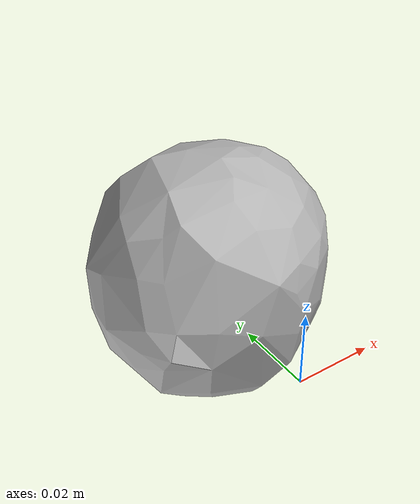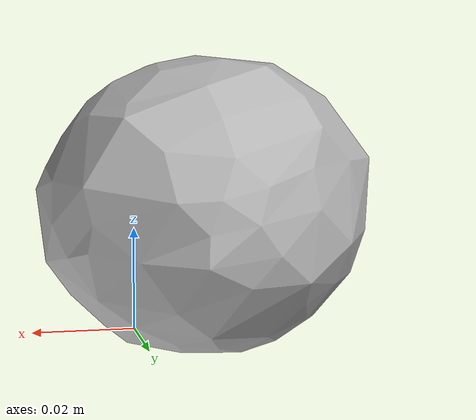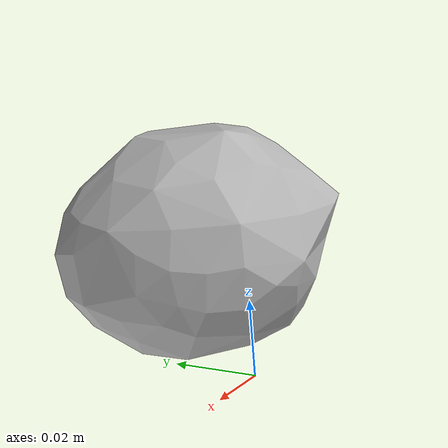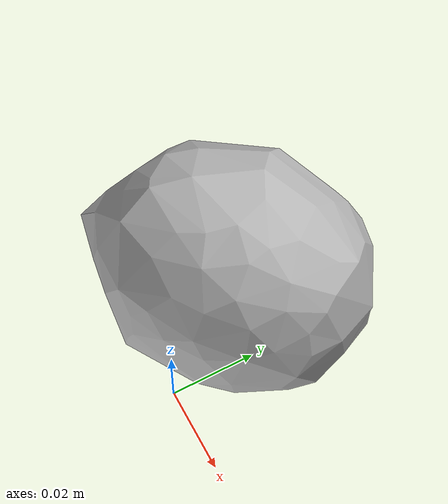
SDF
<?xml version='1.0'?>
<sdf version="1.4">
  <model name="014_lemon">
    <static>false</static>
    <link name="link">
      <inertial>
        <pose>-0.010807938000989007 0.020965891186476376 0.02621456020372423 -1.5467352526122833 0.6316008467291776 2.2944456751465836</pose>
        <mass>0.009764506065694756</mass>
        <inertia>
          <ixx>3.4774463553180732e-06</ixx>
          <ixy>1.0264310488670595e-21</ixy>
          <ixz>-5.188913416070808e-22</ixz>
          <iyy>3.460616514444553e-06</iyy>
          <iyz>2.530919147450806e-22</iyz>
          <izz>2.8033751600439117e-06</izz>
        </inertia>
      </inertial>
      <collision name="collision">
        <geometry>
          <mesh>
            <!-- Use a downsampled mesh for collisions -->
            <uri>model:///014_lemon/014_lemon_250_collision.stl</uri>
	        </mesh>
        </geometry>
        <surface>
      </surface>
      </collision>
      <visual name="visual">
        <geometry>
          <mesh>
            <uri>model:///014_lemon/textured.obj</uri>
	        </mesh>
        </geometry>
        <material>
          <script>
            <uri>model:///014_lemon/014_lemon.material</uri>
            <name>014_lemon</name>
          </script>
        </material>
      </visual>
    </link>
  </model>
</sdf>
